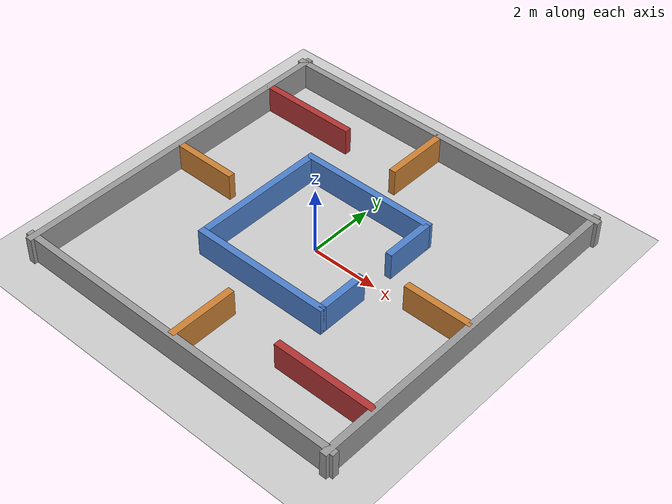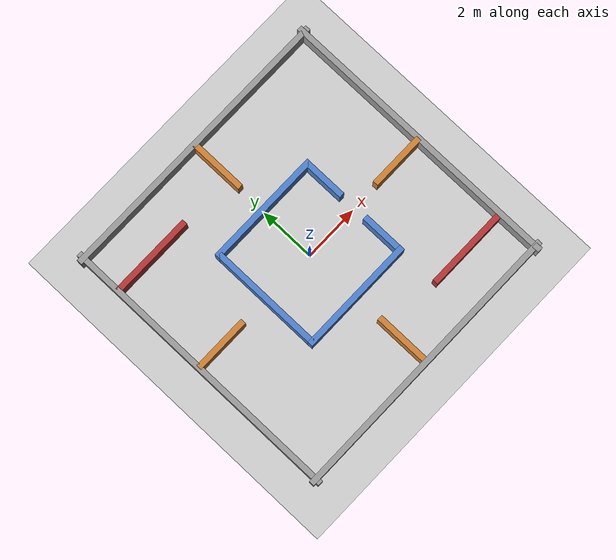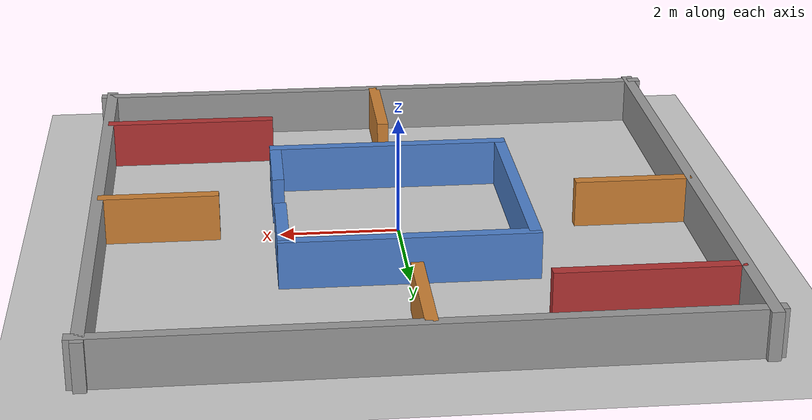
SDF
<?xml version="1.0" ?>

<sdf version="1.9" xmlns:xsi="http://www.w3.org/2001/XMLSchema-instance"
    xsi:noNamespaceSchemaLocation="http://sdformat.org/schemas/root.xsd">
    <world name="mapping_maze">

        <!-- /////////////////// GLOBAL CONFIGURATIONS ///////////////////// -->
        <physics name="fast" type="ignored">
            <max_step_size>0.001</max_step_size>
            <real_time_factor>1.0</real_time_factor>
        </physics>
        <plugin filename="gz-sim-physics-system"
                name="gz::sim::systems::Physics"/>
        <plugin filename="gz-sim-user-commands-system"
                name="gz::sim::systems::UserCommands"/>
        <plugin filename="gz-sim-scene-broadcaster-system"
                name="gz::sim::systems::SceneBroadcaster"/>

        <!-- /////////////////// GUI CONSIDERATIONS ///////////////////// -->
        <gui fullscreen="0">
            <plugin filename="GzScene3D" name="3D View">
                <gz-gui>
                    <title>3D View</title>
                    <property type="bool" key="showTitleBar">false</property>
                    <property type="string" key="state">docked</property>
                </gz-gui>
                <engine>ogre2</engine>
                <scene>scene</scene>
                <ambient_light>0.4 0.4 0.4</ambient_light>
                <background_color>0.8 0.8 0.8</background_color>
                <!-- Angled top-down view to see the full maze -->
                <camera_pose>0 -14 10 0 0.8 1.57</camera_pose>
            </plugin>

            <plugin filename="EntityContextMenuPlugin" name="Entity context menu">
                <gz-gui>
                    <property key="state" type="string">floating</property>
                    <property key="width" type="double">5</property>
                    <property key="height" type="double">5</property>
                    <property key="showTitleBar" type="bool">false</property>
                </gz-gui>
            </plugin>

            <plugin filename="InteractiveViewControl" name="Interactive view control">
                <gz-gui>
                    <property key="resizable" type="bool">false</property>
                    <property key="width" type="double">5</property>
                    <property key="height" type="double">5</property>
                    <property key="state" type="string">floating</property>
                    <property key="showTitleBar" type="bool">false</property>
                </gz-gui>
            </plugin>

            <plugin filename="CameraTracking" name="Camera Tracking">
                <gz-gui>
                    <property key="resizable" type="bool">false</property>
                    <property key="width" type="double">5</property>
                    <property key="height" type="double">5</property>
                    <property key="state" type="string">floating</property>
                    <property key="showTitleBar" type="bool">false</property>
                </gz-gui>
            </plugin>

            <plugin filename="WorldControl" name="WorldControl">
                <gz-gui>
                    <title>World control</title>
                    <property type="bool" key="showTitleBar">false</property>
                    <property type="bool" key="resizable">false</property>
                    <property type="double" key="height">72</property>
                    <property type="double" key="width">121</property>
                    <property type="double" key="z">1</property>
                    <property type="string" key="state">floating</property>
                    <anchors target="3D View">
                        <line own="left" target="left"/>
                        <line own="bottom" target="bottom"/>
                    </anchors>
                </gz-gui>
                <play_pause>true</play_pause>
                <step>true</step>
                <start_paused>true</start_paused>
            </plugin>

            <plugin filename="WorldStats" name="WorldStats">
                <gz-gui>
                    <title>World stats</title>
                    <property type="bool" key="showTitleBar">false</property>
                    <property type="bool" key="resizable">false</property>
                    <property type="double" key="height">110</property>
                    <property type="double" key="width">290</property>
                    <property type="double" key="z">1</property>
                    <property type="string" key="state">floating</property>
                    <anchors target="3D View">
                        <line own="right" target="right"/>
                        <line own="bottom" target="bottom"/>
                    </anchors>
                </gz-gui>
                <sim_time>true</sim_time>
                <real_time>true</real_time>
                <real_time_factor>true</real_time_factor>
                <iterations>true</iterations>
            </plugin>

            <plugin filename="Shapes" name="Shapes">
                <gz-gui>
                    <property key="resizable" type="bool">false</property>
                    <property key="x" type="double">0</property>
                    <property key="y" type="double">0</property>
                    <property key="width" type="double">250</property>
                    <property key="height" type="double">50</property>
                    <property key="state" type="string">floating</property>
                    <property key="showTitleBar" type="bool">false</property>
                    <property key="cardBackground" type="string">#666666</property>
                </gz-gui>
            </plugin>

            <plugin filename="Lights" name="Lights">
                <gz-gui>
                    <property key="resizable" type="bool">false</property>
                    <property key="x" type="double">250</property>
                    <property key="y" type="double">0</property>
                    <property key="width" type="double">150</property>
                    <property key="height" type="double">50</property>
                    <property key="state" type="string">floating</property>
                    <property key="showTitleBar" type="bool">false</property>
                    <property key="cardBackground" type="string">#666666</property>
                </gz-gui>
            </plugin>

            <plugin filename="TransformControl" name="TransformControl">
                <gz-gui>
                    <property key="resizable" type="bool">false</property>
                    <property key="x" type="double">0</property>
                    <property key="y" type="double">50</property>
                    <property key="width" type="double">250</property>
                    <property key="height" type="double">50</property>
                    <property key="state" type="string">floating</property>
                    <property key="showTitleBar" type="bool">false</property>
                    <property key="cardBackground" type="string">#777777</property>
                </gz-gui>
            </plugin>

            <plugin filename="Screenshot" name="Screenshot">
                <gz-gui>
                    <property key="resizable" type="bool">false</property>
                    <property key="x" type="double">250</property>
                    <property key="y" type="double">50</property>
                    <property key="width" type="double">50</property>
                    <property key="height" type="double">50</property>
                    <property key="state" type="string">floating</property>
                    <property key="showTitleBar" type="bool">false</property>
                    <property key="cardBackground" type="string">#777777</property>
                </gz-gui>
            </plugin>

            <plugin filename="EntityTree" name="Entity tree">
                <gz-gui>
                    <property type="string" key="state">docked_collapsed</property>
                </gz-gui>
            </plugin>

            <plugin filename="ComponentInspector" name="Component inspector">
                <gz-gui>
                    <property type="string" key="state">docked_collapsed</property>
                </gz-gui>
            </plugin>

            <plugin filename="ImageDisplay" name="Image Display 2">
                <gz-gui>
                    <title>Depth camera</title>
                    <property key="state" type="string">floating</property>
                    <property type="double" key="width">350</property>
                    <property type="double" key="height">315</property>
                    <property type="double" key="x">1070</property>
                </gz-gui>
                <topic>/world/mapping_maze/model/orion/link/base_link/sensor/camera/depth_image</topic>
                <topic_picker>true</topic_picker>
            </plugin>

            <plugin filename="ImageDisplay" name="Image Display 3">
                <gz-gui>
                    <title>Camera Image</title>
                    <property key="state" type="string">floating</property>
                    <property type="double" key="width">350</property>
                    <property type="double" key="height">315</property>
                    <property type="double" key="y">320</property>
                    <property type="double" key="x">1070</property>
                </gz-gui>
                <topic>/world/mapping_maze/model/orion/link/base_link/sensor/camera/image</topic>
                <topic_picker>true</topic_picker>
            </plugin>

            <plugin filename="VisualizeLidar" name="Visualize Lidar">
                <gz-gui>
                    <property type="string" key="state">docked_collapsed</property>
                </gz-gui>
            </plugin>

            <plugin filename="JointPositionController" name="Joint Position Controller">
                <gz-gui>
                    <property type="string" key="state">docked_collapsed</property>
                </gz-gui>
            </plugin>

            <plugin filename="Teleop" name="Teleop">
                <gz-gui>
                    <property type="string" key="state">docked</property>
                </gz-gui>
                <topic>/model/orion/cmd_vel</topic>
            </plugin>
        </gui>

        <!-- //////////////////////// Scene configuration //////////////// -->
        <scene>
            <ambient>1 1 1 1</ambient>
            <background>0.3 0.7 0.9 1</background>
            <shadows>1</shadows>
            <grid>true</grid>
        </scene>

        <light type="directional" name="sun">
            <cast_shadows>true</cast_shadows>
            <pose>0 0 10 0 0 0</pose>
            <diffuse>0.8 0.8 0.8 1</diffuse>
            <specular>0.2 0.2 0.2 1</specular>
            <attenuation>
                <range>1000</range>
                <constant>0.9</constant>
                <linear>0.01</linear>
                <quadratic>0.001</quadratic>
            </attenuation>
            <direction>-0.5 0.1 -0.9</direction>
        </light>

        <!-- Ground plane -->
        <model name="ground_plane">
            <static>true</static>
            <link name="link">
                <collision name="collision">
                    <geometry>
                        <plane><normal>0 0 1</normal><size>100 100</size></plane>
                    </geometry>
                </collision>
                <visual name="visual">
                    <geometry>
                        <plane><normal>0 0 1</normal><size>100 100</size></plane>
                    </geometry>
                    <material>
                        <ambient>0.8 0.8 0.8 1</ambient>
                        <diffuse>0.8 0.8 0.8 1</diffuse>
                        <specular>0.8 0.8 0.8 1</specular>
                    </material>
                </visual>
            </link>
        </model>

        <!-- ===== OUTER PERIMETER WALLS ===== -->
        <model name="outer_south">
            <static>true</static>
            <pose>0 -5 0.4 0 0 0</pose>
            <link name="link">
                <collision name="collision"><geometry><box><size>10.4 0.2 0.8</size></box></geometry></collision>
                <visual name="visual">
                    <geometry><box><size>10.4 0.2 0.8</size></box></geometry>
                    <material><ambient>0.6 0.6 0.6 1</ambient><diffuse>0.6 0.6 0.6 1</diffuse><specular>0.4 0.4 0.4 1</specular></material>
                </visual>
            </link>
        </model>

        <model name="outer_north">
            <static>true</static>
            <pose>0 5 0.4 0 0 0</pose>
            <link name="link">
                <collision name="collision"><geometry><box><size>10.4 0.2 0.8</size></box></geometry></collision>
                <visual name="visual">
                    <geometry><box><size>10.4 0.2 0.8</size></box></geometry>
                    <material><ambient>0.6 0.6 0.6 1</ambient><diffuse>0.6 0.6 0.6 1</diffuse><specular>0.4 0.4 0.4 1</specular></material>
                </visual>
            </link>
        </model>

        <model name="outer_west">
            <static>true</static>
            <pose>-5 0 0.4 0 0 0</pose>
            <link name="link">
                <collision name="collision"><geometry><box><size>0.2 10.4 0.8</size></box></geometry></collision>
                <visual name="visual">
                    <geometry><box><size>0.2 10.4 0.8</size></box></geometry>
                    <material><ambient>0.6 0.6 0.6 1</ambient><diffuse>0.6 0.6 0.6 1</diffuse><specular>0.4 0.4 0.4 1</specular></material>
                </visual>
            </link>
        </model>

        <model name="outer_east">
            <static>true</static>
            <pose>5 0 0.4 0 0 0</pose>
            <link name="link">
                <collision name="collision"><geometry><box><size>0.2 10.4 0.8</size></box></geometry></collision>
                <visual name="visual">
                    <geometry><box><size>0.2 10.4 0.8</size></box></geometry>
                    <material><ambient>0.6 0.6 0.6 1</ambient><diffuse>0.6 0.6 0.6 1</diffuse><specular>0.4 0.4 0.4 1</specular></material>
                </visual>
            </link>
        </model>

        <!-- ===== CENTRAL ISLAND WALLS (4 x 4 m box, open east side) ===== -->
        <!-- North wall of island: x = -2 to +2 at y = 2 -->
        <model name="island_north">
            <static>true</static>
            <pose>0 2 0.4 0 0 0</pose>
            <link name="link">
                <collision name="collision"><geometry><box><size>4.2 0.2 0.8</size></box></geometry></collision>
                <visual name="visual">
                    <geometry><box><size>4.2 0.2 0.8</size></box></geometry>
                    <material><ambient>0.3 0.5 0.8 1</ambient><diffuse>0.3 0.5 0.8 1</diffuse><specular>0.4 0.4 0.4 1</specular></material>
                </visual>
            </link>
        </model>

        <!-- South wall of island: x = -2 to +2 at y = -2 -->
        <model name="island_south">
            <static>true</static>
            <pose>0 -2 0.4 0 0 0</pose>
            <link name="link">
                <collision name="collision"><geometry><box><size>4.2 0.2 0.8</size></box></geometry></collision>
                <visual name="visual">
                    <geometry><box><size>4.2 0.2 0.8</size></box></geometry>
                    <material><ambient>0.3 0.5 0.8 1</ambient><diffuse>0.3 0.5 0.8 1</diffuse><specular>0.4 0.4 0.4 1</specular></material>
                </visual>
            </link>
        </model>

        <!-- West wall of island: y = -2 to +2 at x = -2 -->
        <model name="island_west">
            <static>true</static>
            <pose>-2 0 0.4 0 0 0</pose>
            <link name="link">
                <collision name="collision"><geometry><box><size>0.2 4.0 0.8</size></box></geometry></collision>
                <visual name="visual">
                    <geometry><box><size>0.2 4.0 0.8</size></box></geometry>
                    <material><ambient>0.3 0.5 0.8 1</ambient><diffuse>0.3 0.5 0.8 1</diffuse><specular>0.4 0.4 0.4 1</specular></material>
                </visual>
            </link>
        </model>

        <!-- East wall of island — north half: y = +0.5 to +2.0 at x = 2 -->
        <!-- Gap: y = -0.5 to +0.5 (1.0 m opening, ORION 0.33 m wide fits easily) -->
        <model name="island_east_north">
            <static>true</static>
            <pose>2 1.25 0.4 0 0 0</pose>
            <link name="link">
                <collision name="collision"><geometry><box><size>0.2 1.5 0.8</size></box></geometry></collision>
                <visual name="visual">
                    <geometry><box><size>0.2 1.5 0.8</size></box></geometry>
                    <material><ambient>0.3 0.5 0.8 1</ambient><diffuse>0.3 0.5 0.8 1</diffuse><specular>0.4 0.4 0.4 1</specular></material>
                </visual>
            </link>
        </model>

        <!-- East wall of island — south half: y = -2.0 to -0.5 at x = 2 -->
        <model name="island_east_south">
            <static>true</static>
            <pose>2 -1.25 0.4 0 0 0</pose>
            <link name="link">
                <collision name="collision"><geometry><box><size>0.2 1.5 0.8</size></box></geometry></collision>
                <visual name="visual">
                    <geometry><box><size>0.2 1.5 0.8</size></box></geometry>
                    <material><ambient>0.3 0.5 0.8 1</ambient><diffuse>0.3 0.5 0.8 1</diffuse><specular>0.4 0.4 0.4 1</specular></material>
                </visual>
            </link>
        </model>

        <!-- ===== CORRIDOR DIVIDERS (force 1 m narrow crossings) ===== -->

        <!-- North divider: x = 0, y = 3 → 5  (gap: y = 2 to 3) -->
        <model name="div_north">
            <static>true</static>
            <pose>0 4 0.4 0 0 0</pose>
            <link name="link">
                <collision name="collision"><geometry><box><size>0.2 2.0 0.8</size></box></geometry></collision>
                <visual name="visual">
                    <geometry><box><size>0.2 2.0 0.8</size></box></geometry>
                    <material><ambient>0.8 0.5 0.2 1</ambient><diffuse>0.8 0.5 0.2 1</diffuse><specular>0.4 0.4 0.4 1</specular></material>
                </visual>
            </link>
        </model>

        <!-- South divider: x = 0, y = -5 → -3  (gap: y = -3 to -2) -->
        <model name="div_south">
            <static>true</static>
            <pose>0 -4 0.4 0 0 0</pose>
            <link name="link">
                <collision name="collision"><geometry><box><size>0.2 2.0 0.8</size></box></geometry></collision>
                <visual name="visual">
                    <geometry><box><size>0.2 2.0 0.8</size></box></geometry>
                    <material><ambient>0.8 0.5 0.2 1</ambient><diffuse>0.8 0.5 0.2 1</diffuse><specular>0.4 0.4 0.4 1</specular></material>
                </visual>
            </link>
        </model>

        <!-- West divider: y = 0, x = -5 → -3  (gap: x = -3 to -2) -->
        <model name="div_west">
            <static>true</static>
            <pose>-4 0 0.4 0 0 0</pose>
            <link name="link">
                <collision name="collision"><geometry><box><size>2.0 0.2 0.8</size></box></geometry></collision>
                <visual name="visual">
                    <geometry><box><size>2.0 0.2 0.8</size></box></geometry>
                    <material><ambient>0.8 0.5 0.2 1</ambient><diffuse>0.8 0.5 0.2 1</diffuse><specular>0.4 0.4 0.4 1</specular></material>
                </visual>
            </link>
        </model>

        <!-- East divider: y = 0, x = 3 → 5  (gap: x = 2 to 3) -->
        <model name="div_east">
            <static>true</static>
            <pose>4 0 0.4 0 0 0</pose>
            <link name="link">
                <collision name="collision"><geometry><box><size>2.0 0.2 0.8</size></box></geometry></collision>
                <visual name="visual">
                    <geometry><box><size>2.0 0.2 0.8</size></box></geometry>
                    <material><ambient>0.8 0.5 0.2 1</ambient><diffuse>0.8 0.5 0.2 1</diffuse><specular>0.4 0.4 0.4 1</specular></material>
                </visual>
            </link>
        </model>

        <!-- ===== DEAD-END ALCOVES (mapping challenge, no exit) ===== -->
        <!--
          NW alcove wall: y = 3.5, x = -5 → -2
          Creates a blind pocket in the north-west quadrant.
          The robot enters from the right side (x > -2) at y = 3.5 → 5.
        -->
        <model name="alcove_nw">
            <static>true</static>
            <pose>-3.5 3.5 0.4 0 0 0</pose>
            <link name="link">
                <collision name="collision"><geometry><box><size>3.0 0.2 0.8</size></box></geometry></collision>
                <visual name="visual">
                    <geometry><box><size>3.0 0.2 0.8</size></box></geometry>
                    <material><ambient>0.7 0.2 0.2 1</ambient><diffuse>0.7 0.2 0.2 1</diffuse><specular>0.4 0.4 0.4 1</specular></material>
                </visual>
            </link>
        </model>

        <!--
          SE alcove wall: y = -3.5, x = 2 → 5
          Creates a blind pocket in the south-east quadrant.
        -->
        <model name="alcove_se">
            <static>true</static>
            <pose>3.5 -3.5 0.4 0 0 0</pose>
            <link name="link">
                <collision name="collision"><geometry><box><size>3.0 0.2 0.8</size></box></geometry></collision>
                <visual name="visual">
                    <geometry><box><size>3.0 0.2 0.8</size></box></geometry>
                    <material><ambient>0.7 0.2 0.2 1</ambient><diffuse>0.7 0.2 0.2 1</diffuse><specular>0.4 0.4 0.4 1</specular></material>
                </visual>
            </link>
        </model>

    </world>
</sdf>
